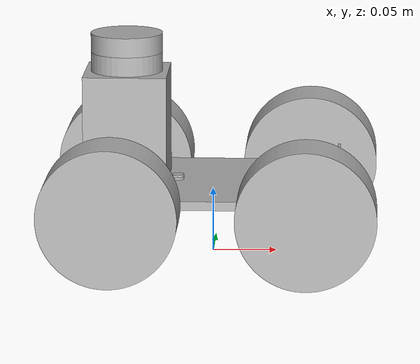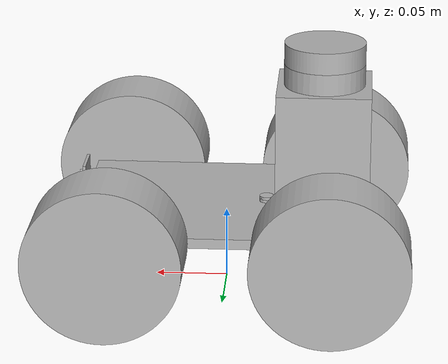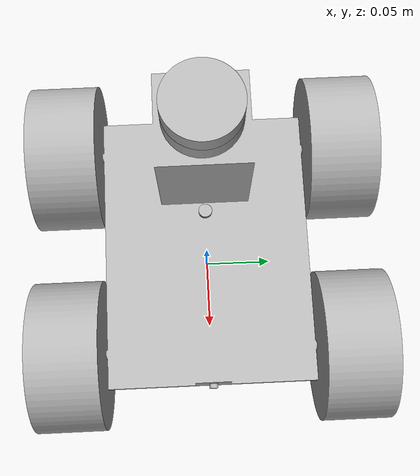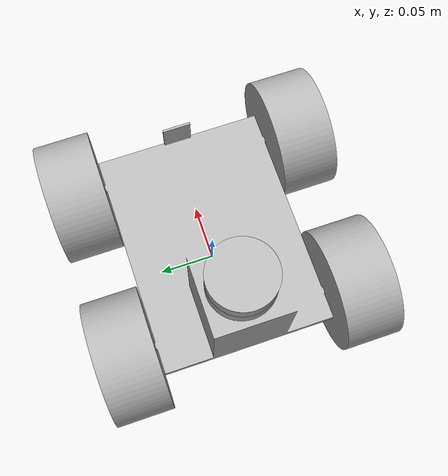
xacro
<?xml version="1.0" ?>
<robot name="smt_model" xmlns:xacro="http://www.ros.org/wiki/xacro">

  <xacro:include filename="$(find smt_model_description)/urdf/materials.xacro"/>
  <xacro:include filename="$(find smt_model_description)/urdf/smt_model.trans"/>
  <xacro:include filename="$(find smt_model_description)/urdf/smt_model.gazebo"/>
  <link name="base_link">
    <inertial>
      <origin xyz="-0.04442209324525173 -1.4796373389488127e-17 0.08749630601210859" rpy="0 0 0"/>
      <mass value="4.825191431023001"/>
      <inertia ixx="0.009585" iyy="0.016936" izz="0.015692" ixy="-0.0" iyz="-0.0" ixz="0.003786"/>
    </inertial>
    <visual>
      <origin xyz="0 0 0" rpy="0 0 0"/>
      <geometry>
        <mesh filename="package://smt_model_description/meshes/base_link.stl" scale="0.001 0.001 0.001"/>
      </geometry>
      <material name="silver"/>
    </visual>
    <collision>
      <origin xyz="0 0 0" rpy="0 0 0"/>
      <geometry>
        <mesh filename="package://smt_model_description/meshes/base_link.stl" scale="0.001 0.001 0.001"/>
      </geometry>
    </collision>
  </link>

  <link name="wheel_left_front_1">
    <inertial>
      <origin xyz="1.3877787807814457e-17 0.024500000000000008 -1.3877787807814457e-17" rpy="0 0 0"/>
      <mass value="0.46704570436797993"/>
      <inertia ixx="0.000428" iyy="0.000668" izz="0.000428" ixy="0.0" iyz="0.0" ixz="-0.0"/>
    </inertial>
    <visual>
      <origin xyz="-0.075 -0.076 -0.0535" rpy="0 0 0"/>
      <geometry>
        <mesh filename="package://smt_model_description/meshes/wheel_left_front_1.stl" scale="0.001 0.001 0.001"/>
      </geometry>
      <material name="silver"/>
    </visual>
    <collision>
      <origin xyz="-0.075 -0.076 -0.0535" rpy="0 0 0"/>
      <geometry>
        <mesh filename="package://smt_model_description/meshes/wheel_left_front_1.stl" scale="0.001 0.001 0.001"/>
      </geometry>
    </collision>
  </link>

  <link name="wheel_left_back_1">
    <inertial>
      <origin xyz="0.0 0.024500000000000008 6.938893903907228e-18" rpy="0 0 0"/>
      <mass value="0.46704570436797993"/>
      <inertia ixx="0.000428" iyy="0.000668" izz="0.000428" ixy="0.0" iyz="-0.0" ixz="0.0"/>
    </inertial>
    <visual>
      <origin xyz="0.075 -0.076 -0.0535" rpy="0 0 0"/>
      <geometry>
        <mesh filename="package://smt_model_description/meshes/wheel_left_back_1.stl" scale="0.001 0.001 0.001"/>
      </geometry>
      <material name="silver"/>
    </visual>
    <collision>
      <origin xyz="0.075 -0.076 -0.0535" rpy="0 0 0"/>
      <geometry>
        <mesh filename="package://smt_model_description/meshes/wheel_left_back_1.stl" scale="0.001 0.001 0.001"/>
      </geometry>
    </collision>
  </link>

  <link name="wheel_right_back_1">
    <inertial>
      <origin xyz="0.0 -0.024500000000000008 0.0" rpy="0 0 0"/>
      <mass value="0.46704570436797993"/>
      <inertia ixx="0.000428" iyy="0.000668" izz="0.000428" ixy="-0.0" iyz="-0.0" ixz="0.0"/>
    </inertial>
    <visual>
      <origin xyz="0.075 0.076 -0.0535" rpy="0 0 0"/>
      <geometry>
        <mesh filename="package://smt_model_description/meshes/wheel_right_back_1.stl" scale="0.001 0.001 0.001"/>
      </geometry>
      <material name="silver"/>
    </visual>
    <collision>
      <origin xyz="0.075 0.076 -0.0535" rpy="0 0 0"/>
      <geometry>
        <mesh filename="package://smt_model_description/meshes/wheel_right_back_1.stl" scale="0.001 0.001 0.001"/>
      </geometry>
    </collision>
  </link>

  <link name="wheel_right_front_1">
    <inertial>
      <origin xyz="1.3877787807814457e-17 -0.024500000000000008 0.0" rpy="0 0 0"/>
      <mass value="0.46704570436797993"/>
      <inertia ixx="0.000428" iyy="0.000668" izz="0.000428" ixy="0.0" iyz="-0.0" ixz="-0.0"/>
    </inertial>
    <visual>
      <origin xyz="-0.075 0.076 -0.0535" rpy="0 0 0"/>
      <geometry>
        <mesh filename="package://smt_model_description/meshes/wheel_right_front_1.stl" scale="0.001 0.001 0.001"/>
      </geometry>
      <material name="silver"/>
    </visual>
    <collision>
      <origin xyz="-0.075 0.076 -0.0535" rpy="0 0 0"/>
      <geometry>
        <mesh filename="package://smt_model_description/meshes/wheel_right_front_1.stl" scale="0.001 0.001 0.001"/>
      </geometry>
    </collision>
  </link>

  <link name="lidar_1">
    <inertial>
      <origin xyz="0.0 0.0 0.007500000000000007" rpy="0 0 0"/>
      <mass value="0.29001926740879547"/>
      <inertia ixx="6.2e-05" iyy="6.2e-05" izz="0.000114" ixy="-0.0" iyz="-0.0" ixz="0.0"/>
    </inertial>
    <visual>
      <origin xyz="0.0675 -0.0 -0.159" rpy="0 0 0"/>
      <geometry>
        <mesh filename="package://smt_model_description/meshes/lidar_1.stl" scale="0.001 0.001 0.001"/>
      </geometry>
      <material name="silver"/>
    </visual>
    <collision>
      <origin xyz="0.0675 -0.0 -0.159" rpy="0 0 0"/>
      <geometry>
        <mesh filename="package://smt_model_description/meshes/lidar_1.stl" scale="0.001 0.001 0.001"/>
      </geometry>
    </collision>
  </link>

  <link name="cam_1">
    <inertial>
      <origin xyz="0.001500000000000043 3.136830235032246e-13 1.3877787807814457e-17" rpy="0 0 0"/>
      <mass value="0.000665860562928387"/>
      <inertia ixx="0.0" iyy="0.0" izz="0.0" ixy="0.0" iyz="-0.0" ixz="0.0"/>
    </inertial>
    <visual>
      <origin xyz="-0.1005 0.0 -0.074" rpy="0 0 0"/>
      <geometry>
        <mesh filename="package://smt_model_description/meshes/cam_1.stl" scale="0.001 0.001 0.001"/>
      </geometry>
      <material name="silver"/>
    </visual>
    <collision>
      <origin xyz="-0.1005 0.0 -0.074" rpy="0 0 0"/>
      <geometry>
        <mesh filename="package://smt_model_description/meshes/cam_1.stl" scale="0.001 0.001 0.001"/>
      </geometry>
    </collision>
  </link>

  <link name="IMU_1">
    <inertial>
      <origin xyz="-5.228407822368264e-13 0.0 0.0010000000000000217" rpy="0 0 0"/>
      <mass value="0.0012330751165340477"/>
      <inertia ixx="0.0" iyy="0.0" izz="0.0" ixy="0.0" iyz="0.0" ixz="0.0"/>
    </inertial>
    <visual>
      <origin xyz="0.034 -0.0 -0.06" rpy="0 0 0"/>
      <geometry>
        <mesh filename="package://smt_model_description/meshes/IMU_1.stl" scale="0.001 0.001 0.001"/>
      </geometry>
      <material name="silver"/>
    </visual>
    <collision>
      <origin xyz="0.034 -0.0 -0.06" rpy="0 0 0"/>
      <geometry>
        <mesh filename="package://smt_model_description/meshes/IMU_1.stl" scale="0.001 0.001 0.001"/>
      </geometry>
    </collision>
  </link>

  <joint name="Revolute_2" type="continuous">
    <origin xyz="0.075 0.076 0.0535" rpy="0 0 0"/>
    <parent link="base_link"/>
    <child link="wheel_left_front_1"/>
    <axis xyz="0.0 1.0 0.0"/>
  </joint>

  <joint name="Revolute_3" type="continuous">
    <origin xyz="-0.075 0.076 0.0535" rpy="0 0 0"/>
    <parent link="base_link"/>
    <child link="wheel_left_back_1"/>
    <axis xyz="0.0 1.0 0.0"/>
  </joint>

  <joint name="Revolute_4" type="continuous">
    <origin xyz="-0.075 -0.076 0.0535" rpy="0 0 0"/>
    <parent link="base_link"/>
    <child link="wheel_right_back_1"/>
    <axis xyz="0.0 1.0 0.0"/>
  </joint>

  <joint name="Revolute_5" type="continuous">
    <origin xyz="0.075 -0.076 0.0535" rpy="0 0 0"/>
    <parent link="base_link"/>
    <child link="wheel_right_front_1"/>
    <axis xyz="0.0 1.0 0.0"/>
  </joint>

  <joint name="Rigid 6" type="fixed">
    <origin xyz="-0.0675 0.0 0.159" rpy="0 0 0"/>
    <parent link="base_link"/>
    <child link="lidar_1"/>
  </joint>

  <joint name="Rigid 7" type="fixed">
    <origin xyz="0.1005 0.0 0.074" rpy="0 0 0"/>
    <parent link="base_link"/>
    <child link="cam_1"/>
  </joint>

  <joint name="Rigid 8" type="fixed">
    <origin xyz="-0.034 0.0 0.059" rpy="0 0 0"/>
    <parent link="base_link"/>
    <child link="IMU_1"/>
  </joint>

  <joint name="camera_optical_joint" type="fixed">
    <origin xyz="0 0 0" rpy="-1.5708 0 -1.5708"/>
    <parent link="cam_1"/>
    <child link="camera_link_optical"/>
  </joint>

  <link name="camera_link_optical" />

</robot>

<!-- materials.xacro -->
<robot name="smt_model" xmlns:xacro="http://www.ros.org/wiki/xacro">

  <material name="silver">
    <color rgba="0.700 0.700 0.700 1.000"/>
  </material>

</robot>

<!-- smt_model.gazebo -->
<robot name="smt_model" xmlns:xacro="http://www.ros.org/wiki/xacro">

  <xacro:arg name="simulation" default="false"/>

  <xacro:property name="body_color" value="Gazebo/Silver"/>

  <gazebo>
    <plugin name="control" filename="libgazebo_ros_control.so"/>
  </gazebo>
  <gazebo reference="base_link">
    <material>${body_color}</material>
    <mu1>0.2</mu1>
    <mu2>0.2</mu2>
    <selfCollide>true</selfCollide>
    <gravity>true</gravity>
  </gazebo>

  <gazebo reference="wheel_left_front_1">
    <material>${body_color}</material>
    <mu1>0.2</mu1>
    <mu2>0.2</mu2>
    <selfCollide>true</selfCollide>
  </gazebo>

  <gazebo reference="wheel_left_back_1">
    <material>${body_color}</material>
    <mu1>0.2</mu1>
    <mu2>0.2</mu2>
    <selfCollide>true</selfCollide>
  </gazebo>

  <gazebo reference="wheel_right_back_1">
    <material>${body_color}</material>
    <mu1>0.2</mu1>
    <mu2>0.2</mu2>
    <selfCollide>true</selfCollide>
  </gazebo>

  <gazebo reference="wheel_right_front_1">
    <material>${body_color}</material>
    <mu1>0.2</mu1>
    <mu2>0.2</mu2>
    <selfCollide>true</selfCollide>
  </gazebo>

  <gazebo reference="lidar_1">
    <material>${body_color}</material>
    <mu1>0.2</mu1>
    <mu2>0.2</mu2>
    <selfCollide>true</selfCollide>
  </gazebo>

  <gazebo>
    <plugin name="skid_steer_drive_controller" filename="libgazebo_ros_skid_steer_drive.so">
      <updateRate>100.0</updateRate>
      <robotNamespace>/</robotNamespace>
      <leftFrontJoint>Revolute_2</leftFrontJoint>
      <leftRearJoint>Revolute_3</leftRearJoint>
      <rightRearJoint>Revolute_4</rightRearJoint>
      <rightFrontJoint>Revolute_5</rightFrontJoint>
      <wheelSeparation>0.201</wheelSeparation>
      <wheelDiameter>0.107</wheelDiameter>
      <robotBaseFrame>base_link</robotBaseFrame>
      <torque>1</torque>
      <topicName>cmd_vel</topicName>
      <broadcastTF>false</broadcastTF>
    </plugin>
  </gazebo>

  <!-- lidar -->
  <gazebo reference="lidar_1">
    <material>Gazebo/Red</material>
    <sensor type="ray" name="laser">
      <pose>0 0 0 0 0 0</pose>
      <visualize>true</visualize>
      <update_rate>5</update_rate>
      <ray>
        <scan>
          <horizontal>
            <samples>360</samples>
            <min_angle>-3.14</min_angle>
            <max_angle>3.14</max_angle>
          </horizontal>
        </scan>
        <range>
          <min>0.30</min>
          <max>12</max>
        </range>
        <noise>
          <type>gaussian</type>
          <mean>0.0</mean>
          <stddev>0.01</stddev>
        </noise>
      </ray>
      <xacro:if value="$(arg simulation)">
        <plugin name="laser_controller" filename="libgazebo_ros_laser.so">
          <topicName>/scan</topicName>
          <output_type>sensor_msgs/LaserScan</output_type>
          <frameName>lidar_1</frameName>
        </plugin>
      </xacro:if>
    </sensor>
  </gazebo>

  <!-- camera -->
  <gazebo reference="cam_1">
    <sensor type="camera" name="camera1">
      <update_rate>30.0</update_rate>
      <camera name="head">
        <horizontal_fov>1.18682389</horizontal_fov>
        <image>
          <width>640</width>
          <height>480</height>
          <format>R8G8B8</format>
        </image>
        <clip>
          <near>0.1</near>
          <far>1000</far>
        </clip>
        <noise>
          <type>gaussian</type>
          <!-- Noise is sampled independently per pixel on each frame.
               That pixel's noise value is added to each of its color
               channels, which at that point lie in the range [0,1]. -->
          <mean>0.0</mean>
          <stddev>0.007</stddev>
        </noise>
      </camera>
      <xacro:if value="$(arg simulation)">
        <plugin name="camera_controller" filename="libgazebo_ros_camera.so">
          <alwaysOn>true</alwaysOn>
          <updateRate>0.0</updateRate>
          <cameraName>camera1</cameraName>
          <imageTopicName>image_raw</imageTopicName>
          <cameraInfoTopicName>camera_info</cameraInfoTopicName>
          <frameName>camera_link_optical</frameName>
          <hackBaseline>0.07</hackBaseline>
          <distortionK1>0.0</distortionK1>
          <distortionK2>0.0</distortionK2>
          <distortionK3>0.0</distortionK3>
          <distortionT1>0.0</distortionT1>
          <distortionT2>0.0</distortionT2>
        </plugin>
      </xacro:if>
    </sensor>
  </gazebo>

  <!-- IMU -->
  <gazebo reference="IMU_1">
    <gravity>true</gravity>
    <sensor name="imu_sensor" type="imu">
      <always_on>true</always_on>
      <update_rate>100</update_rate>
      <visualize>true</visualize>
      <topic>_default_topic_</topic>
      <xacro:if value="$(arg simulation)">
        <plugin filename="libgazebo_ros_imu_sensor.so" name="imu_plugin">
          <topicName>imu/data</topicName>
          <bodyName>IMU_1</bodyName>
          <updateRateHZ>100.0</updateRateHZ>
          <gaussianNoise>0.5</gaussianNoise>
          <xyzOffset>0 0 0</xyzOffset>
          <rpyOffset>0 0 0</rpyOffset>
          <frameName>IMU_1</frameName>
          <initialOrientationAsReference>false</initialOrientationAsReference>
        </plugin>
      </xacro:if>
      <pose>0 0 0 0 0 0</pose>
    </sensor>
  </gazebo>

</robot>
